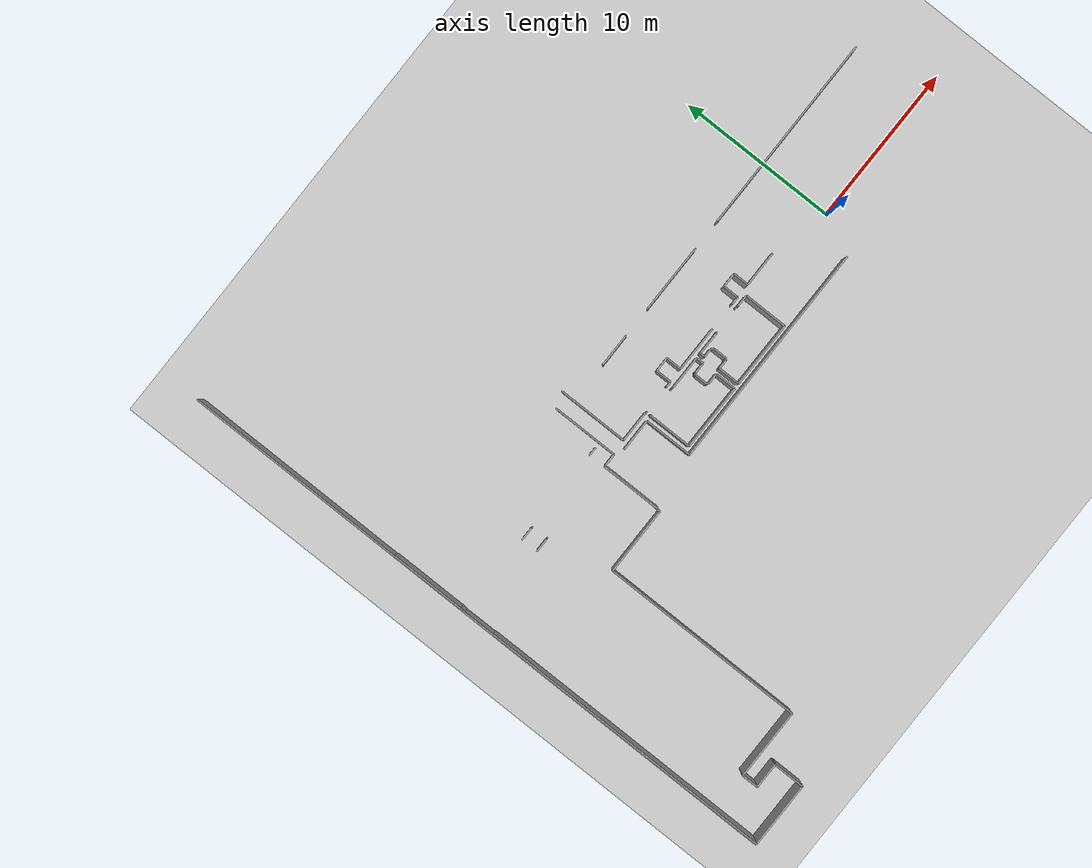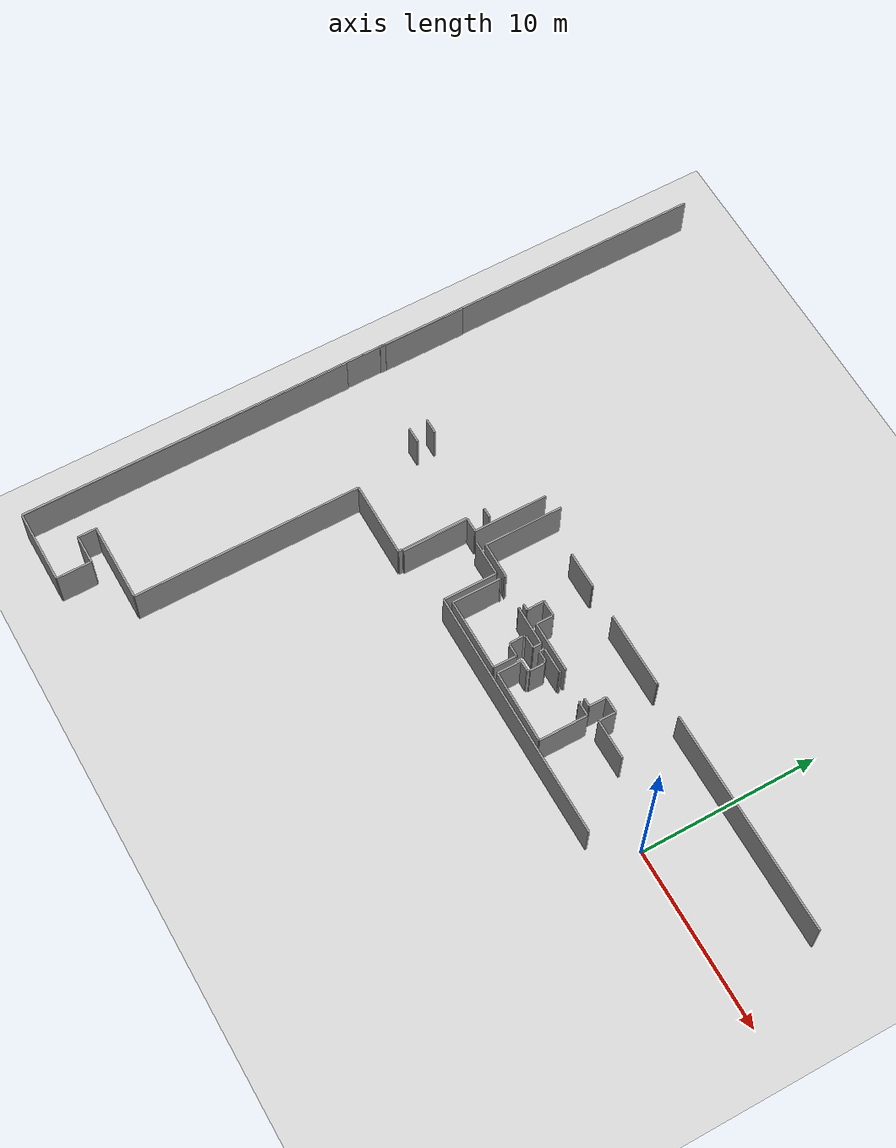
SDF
<sdf version="1.6">
 <world name="default">
  <model name="ground_plane">
   <static>1</static>
   <link name="link">
    <collision name="collision">
     <geometry><plane><normal>0 0 1</normal><size>100 100</size></plane></geometry>
     <surface><friction><ode><mu>100</mu><mu2>50</mu2></ode></friction></surface>
    </collision>
    <visual name="visual">
     <cast_shadows>0</cast_shadows>
     <geometry><plane><normal>0 0 1</normal><size>100 100</size></plane></geometry>
     <material>
      <script><uri>file://media/materials/scripts/gazebo.material</uri><name>Gazebo/Grey</name></script>
     </material>
    </visual>
   </link>
  </model>
  <model name="0510032259_A_40_1_101">
   <static>1</static>
   <link name="Wall_11">
    <collision name="Wall_11_Collision">
     <geometry><box><size>4.69146624995 0.1 2.5</size></box></geometry>
     <pose>2.34573312498 0 1.25 0 0 0</pose>
    </collision>
    <visual name="Wall_11_Visual">
     <pose>2.34573312498 0 1.25 0 0 0</pose>
     <geometry><box><size>4.69146624995 0.1 2.5</size></box></geometry>
     <material>
      <script><uri>file://media/materials/scripts/gazebo.material</uri><name>Gazebo/Grey</name></script>
      <ambient>1 1 1 1</ambient>
     </material>
    </visual>
    <pose>0.0318888084258 -18.6801082441 0 0 0 1.57079632679</pose>
   </link>
   <link name="Wall_18">
    <collision name="Wall_18_Collision">
     <geometry><box><size>0.558752906201 0.1 2.5</size></box></geometry>
     <pose>0.279376453101 0 1.25 0 0 0</pose>
    </collision>
    <visual name="Wall_18_Visual">
     <pose>0.279376453101 0 1.25 0 0 0</pose>
     <geometry><box><size>0.558752906201 0.1 2.5</size></box></geometry>
     <material>
      <script><uri>file://media/materials/scripts/gazebo.material</uri><name>Gazebo/Grey</name></script>
      <ambient>1 1 1 1</ambient>
     </material>
    </visual>
    <pose>11.688455235 -19.0025536456 0 0 0 3.14159265359</pose>
   </link>
   <link name="Wall_19">
    <collision name="Wall_19_Collision">
     <geometry><box><size>0.847276746579 0.1 2.5</size></box></geometry>
     <pose>0.42363837329 0 1.25 0 0 0</pose>
    </collision>
    <visual name="Wall_19_Visual">
     <pose>0.42363837329 0 1.25 0 0 0</pose>
     <geometry><box><size>0.847276746579 0.1 2.5</size></box></geometry>
     <material>
      <script><uri>file://media/materials/scripts/gazebo.material</uri><name>Gazebo/Grey</name></script>
      <ambient>1 1 1 1</ambient>
     </material>
    </visual>
    <pose>5.98391584404 -19.0025536456 0 0 0 3.14159265359</pose>
   </link>
   <link name="Wall_20">
    <collision name="Wall_20_Collision">
     <geometry><box><size>0.322593764156 0.1 2.5</size></box></geometry>
     <pose>0.161296882078 0 1.25 0 0 0</pose>
    </collision>
    <visual name="Wall_20_Visual">
     <pose>0.161296882078 0 1.25 0 0 0</pose>
     <geometry><box><size>0.322593764156 0.1 2.5</size></box></geometry>
     <material>
      <script><uri>file://media/materials/scripts/gazebo.material</uri><name>Gazebo/Grey</name></script>
      <ambient>1 1 1 1</ambient>
     </material>
    </visual>
    <pose>0.0221061859206 -19.0025536456 0 0 0 1.54046678059</pose>
   </link>
   <link name="Wall_21">
    <collision name="Wall_21_Collision">
     <geometry><box><size>18.7088208764 0.1 2.5</size></box></geometry>
     <pose>9.35441043819 0 1.25 0 0 0</pose>
    </collision>
    <visual name="Wall_21_Visual">
     <pose>9.35441043819 0 1.25 0 0 0</pose>
     <geometry><box><size>18.7088208764 0.1 2.5</size></box></geometry>
     <material>
      <script><uri>file://media/materials/scripts/gazebo.material</uri><name>Gazebo/Grey</name></script>
      <ambient>1 1 1 1</ambient>
     </material>
    </visual>
    <pose>0.0362084079735 -39.7117302537 0 0 0 1.57079632679</pose>
   </link>
   <link name="Wall_22">
    <collision name="Wall_22_Collision">
     <geometry><box><size>0.0362084079735 0.1 2.5</size></box></geometry>
     <pose>0.0181042039867 0 1.25 0 0 0</pose>
    </collision>
    <visual name="Wall_22_Visual">
     <pose>0.0181042039867 0 1.25 0 0 0</pose>
     <geometry><box><size>0.0362084079735 0.1 2.5</size></box></geometry>
     <material>
      <script><uri>file://media/materials/scripts/gazebo.material</uri><name>Gazebo/Grey</name></script>
      <ambient>1 1 1 1</ambient>
     </material>
    </visual>
    <pose>0.0362084079735 -21.0029093773 0 0 0 3.14159265359</pose>
   </link>
   <link name="Wall_23">
    <collision name="Wall_23_Collision">
     <geometry><box><size>0.0195652450102 0.1 2.5</size></box></geometry>
     <pose>0.00978262250511 0 1.25 0 0 0</pose>
    </collision>
    <visual name="Wall_23_Visual">
     <pose>0.00978262250511 0 1.25 0 0 0</pose>
     <geometry><box><size>0.0195652450102 0.1 2.5</size></box></geometry>
     <material>
      <script><uri>file://media/materials/scripts/gazebo.material</uri><name>Gazebo/Grey</name></script>
      <ambient>1 1 1 1</ambient>
     </material>
    </visual>
    <pose>0.0 -20.0471344539 0 0 0 0.0</pose>
   </link>
   <link name="Wall_24">
    <collision name="Wall_24_Collision">
     <geometry><box><size>0.884374483871 0.1 2.5</size></box></geometry>
     <pose>0.442187241936 0 1.25 0 0 0</pose>
    </collision>
    <visual name="Wall_24_Visual">
     <pose>0.442187241936 0 1.25 0 0 0</pose>
     <geometry><box><size>0.884374483871 0.1 2.5</size></box></geometry>
     <material>
      <script><uri>file://media/materials/scripts/gazebo.material</uri><name>Gazebo/Grey</name></script>
      <ambient>1 1 1 1</ambient>
     </material>
    </visual>
    <pose>5.14781923746 -20.0471344539 0 0 0 0.0</pose>
   </link>
   <link name="Wall_25">
    <collision name="Wall_25_Collision">
     <geometry><box><size>3.73480199718 0.1 2.5</size></box></geometry>
     <pose>1.86740099859 0 1.25 0 0 0</pose>
    </collision>
    <visual name="Wall_25_Visual">
     <pose>1.86740099859 0 1.25 0 0 0</pose>
     <geometry><box><size>3.73480199718 0.1 2.5</size></box></geometry>
     <material>
      <script><uri>file://media/materials/scripts/gazebo.material</uri><name>Gazebo/Grey</name></script>
      <ambient>1 1 1 1</ambient>
     </material>
    </visual>
    <pose>11.1791236295 -20.0471344539 0 0 0 -1.57079632679</pose>
   </link>
   <link name="Wall_26">
    <collision name="Wall_26_Collision">
     <geometry><box><size>0.0316347143347 0.1 2.5</size></box></geometry>
     <pose>0.0158173571674 0 1.25 0 0 0</pose>
    </collision>
    <visual name="Wall_26_Visual">
     <pose>0.0158173571674 0 1.25 0 0 0</pose>
     <geometry><box><size>0.0316347143347 0.1 2.5</size></box></geometry>
     <material>
      <script><uri>file://media/materials/scripts/gazebo.material</uri><name>Gazebo/Grey</name></script>
      <ambient>1 1 1 1</ambient>
     </material>
    </visual>
    <pose>11.1791236295 -23.7819364511 0 0 0 3.14159265359</pose>
   </link>
   <link name="Wall_27">
    <collision name="Wall_27_Collision">
     <geometry><box><size>0.226143741027 0.1 2.5</size></box></geometry>
     <pose>0.113071870514 0 1.25 0 0 0</pose>
    </collision>
    <visual name="Wall_27_Visual">
     <pose>0.113071870514 0 1.25 0 0 0</pose>
     <geometry><box><size>0.226143741027 0.1 2.5</size></box></geometry>
     <material>
      <script><uri>file://media/materials/scripts/gazebo.material</uri><name>Gazebo/Grey</name></script>
      <ambient>1 1 1 1</ambient>
     </material>
    </visual>
    <pose>11.1474889151 -23.7819364511 0 0 0 -1.57079632679</pose>
   </link>
   <link name="Wall_28">
    <collision name="Wall_28_Collision">
     <geometry><box><size>4.21249888834 0.1 2.5</size></box></geometry>
     <pose>2.10624944417 0 1.25 0 0 0</pose>
    </collision>
    <visual name="Wall_28_Visual">
     <pose>2.10624944417 0 1.25 0 0 0</pose>
     <geometry><box><size>4.21249888834 0.1 2.5</size></box></geometry>
     <material>
      <script><uri>file://media/materials/scripts/gazebo.material</uri><name>Gazebo/Grey</name></script>
      <ambient>1 1 1 1</ambient>
     </material>
    </visual>
    <pose>11.1474889151 -24.0080801921 0 0 0 3.14159265359</pose>
   </link>
   <link name="Wall_29">
    <collision name="Wall_29_Collision">
     <geometry><box><size>12.735195843 0.1 2.5</size></box></geometry>
     <pose>6.36759792151 0 1.25 0 0 0</pose>
    </collision>
    <visual name="Wall_29_Visual">
     <pose>6.36759792151 0 1.25 0 0 0</pose>
     <geometry><box><size>12.735195843 0.1 2.5</size></box></geometry>
     <material>
      <script><uri>file://media/materials/scripts/gazebo.material</uri><name>Gazebo/Grey</name></script>
      <ambient>1 1 1 1</ambient>
     </material>
    </visual>
    <pose>6.93499002681 -24.0080801921 0 0 0 -1.57079632679</pose>
   </link>
   <link name="Wall_30">
    <collision name="Wall_30_Collision">
     <geometry><box><size>4.39061884616 0.1 2.5</size></box></geometry>
     <pose>2.19530942308 0 1.25 0 0 0</pose>
    </collision>
    <visual name="Wall_30_Visual">
     <pose>2.19530942308 0 1.25 0 0 0</pose>
     <geometry><box><size>4.39061884616 0.1 2.5</size></box></geometry>
     <material>
      <script><uri>file://media/materials/scripts/gazebo.material</uri><name>Gazebo/Grey</name></script>
      <ambient>1 1 1 1</ambient>
     </material>
    </visual>
    <pose>6.93499002681 -36.7432760351 0 0 0 3.14159265359</pose>
   </link>
   <link name="Wall_31">
    <collision name="Wall_31_Collision">
     <geometry><box><size>1.0253967044 0.1 2.5</size></box></geometry>
     <pose>0.5126983522 0 1.25 0 0 0</pose>
    </collision>
    <visual name="Wall_31_Visual">
     <pose>0.5126983522 0 1.25 0 0 0</pose>
     <geometry><box><size>1.0253967044 0.1 2.5</size></box></geometry>
     <material>
      <script><uri>file://media/materials/scripts/gazebo.material</uri><name>Gazebo/Grey</name></script>
      <ambient>1 1 1 1</ambient>
     </material>
    </visual>
    <pose>2.54437118065 -36.7432760351 0 0 0 -1.57079632679</pose>
   </link>
   <link name="Wall_32">
    <collision name="Wall_32_Collision">
     <geometry><box><size>1.58999377469 0.1 2.5</size></box></geometry>
     <pose>0.794996887347 0 1.25 0 0 0</pose>
    </collision>
    <visual name="Wall_32_Visual">
     <pose>0.794996887347 0 1.25 0 0 0</pose>
     <geometry><box><size>1.58999377469 0.1 2.5</size></box></geometry>
     <material>
      <script><uri>file://media/materials/scripts/gazebo.material</uri><name>Gazebo/Grey</name></script>
      <ambient>1 1 1 1</ambient>
     </material>
    </visual>
    <pose>2.54437118065 -37.7686727395 0 0 0 0.0</pose>
   </link>
   <link name="Wall_33">
    <collision name="Wall_33_Collision">
     <geometry><box><size>1.94280342011 0.1 2.5</size></box></geometry>
     <pose>0.971401710053 0 1.25 0 0 0</pose>
    </collision>
    <visual name="Wall_33_Visual">
     <pose>0.971401710053 0 1.25 0 0 0</pose>
     <geometry><box><size>1.94280342011 0.1 2.5</size></box></geometry>
     <material>
      <script><uri>file://media/materials/scripts/gazebo.material</uri><name>Gazebo/Grey</name></script>
      <ambient>1 1 1 1</ambient>
     </material>
    </visual>
    <pose>4.13436495534 -37.7686727395 0 0 0 -1.57079632679</pose>
   </link>
   <link name="Wall_34">
    <collision name="Wall_34_Collision">
     <geometry><box><size>4.09815655525 0.1 2.5</size></box></geometry>
     <pose>2.04907827762 0 1.25 0 0 0</pose>
    </collision>
    <visual name="Wall_34_Visual">
     <pose>2.04907827762 0 1.25 0 0 0</pose>
     <geometry><box><size>4.09815655525 0.1 2.5</size></box></geometry>
     <material>
      <script><uri>file://media/materials/scripts/gazebo.material</uri><name>Gazebo/Grey</name></script>
      <ambient>1 1 1 1</ambient>
     </material>
    </visual>
    <pose>4.13436495534 -39.7114761596 0 0 0 -3.14153065154</pose>
   </link>
   <link name="Wall_35">
    <collision name="Wall_35_Collision">
     <geometry><box><size>4.4091677148 0.1 2.5</size></box></geometry>
     <pose>2.2045838574 0 1.25 0 0 0</pose>
    </collision>
    <visual name="Wall_35_Visual">
     <pose>2.2045838574 0 1.25 0 0 0</pose>
     <geometry><box><size>4.4091677148 0.1 2.5</size></box></geometry>
     <material>
      <script><uri>file://media/materials/scripts/gazebo.material</uri><name>Gazebo/Grey</name></script>
      <ambient>1 1 1 1</ambient>
     </material>
    </visual>
    <pose>12.9830646288 -19.9635374979 0 0 0 1.57079632679</pose>
   </link>
   <link name="Wall_50">
    <collision name="Wall_50_Collision">
     <geometry><box><size>2.0692152304 0.1 2.5</size></box></geometry>
     <pose>1.0346076152 0 1.25 0 0 0</pose>
    </collision>
    <visual name="Wall_50_Visual">
     <pose>1.0346076152 0 1.25 0 0 0</pose>
     <geometry><box><size>2.0692152304 0.1 2.5</size></box></geometry>
     <material>
      <script><uri>file://media/materials/scripts/gazebo.material</uri><name>Gazebo/Grey</name></script>
      <ambient>1 1 1 1</ambient>
     </material>
    </visual>
    <pose>15.5409027963 -16.4543710536 0 0 0 0.0</pose>
   </link>
   <link name="Wall_51">
    <collision name="Wall_51_Collision">
     <geometry><box><size>0.0335404200175 0.1 2.5</size></box></geometry>
     <pose>0.0167702100088 0 1.25 0 0 0</pose>
    </collision>
    <visual name="Wall_51_Visual">
     <pose>0.0167702100088 0 1.25 0 0 0</pose>
     <geometry><box><size>0.0335404200175 0.1 2.5</size></box></geometry>
     <material>
      <script><uri>file://media/materials/scripts/gazebo.material</uri><name>Gazebo/Grey</name></script>
      <ambient>1 1 1 1</ambient>
     </material>
    </visual>
    <pose>17.6101180267 -16.4543710536 0 0 0 1.57079632679</pose>
   </link>
   <link name="Wall_55">
    <collision name="Wall_55_Collision">
     <geometry><box><size>4.2333346038 0.1 2.5</size></box></geometry>
     <pose>2.1166673019 0 1.25 0 0 0</pose>
    </collision>
    <visual name="Wall_55_Visual">
     <pose>2.1166673019 0 1.25 0 0 0</pose>
     <geometry><box><size>4.2333346038 0.1 2.5</size></box></geometry>
     <material>
      <script><uri>file://media/materials/scripts/gazebo.material</uri><name>Gazebo/Grey</name></script>
      <ambient>1 1 1 1</ambient>
     </material>
    </visual>
    <pose>19.5470772827 -16.4574201827 0 0 0 0.0</pose>
   </link>
   <link name="Wall_56">
    <collision name="Wall_56_Collision">
     <geometry><box><size>0.0381141136563 0.1 2.5</size></box></geometry>
     <pose>0.0190570568281 0 1.25 0 0 0</pose>
    </collision>
    <visual name="Wall_56_Visual">
     <pose>0.0190570568281 0 1.25 0 0 0</pose>
     <geometry><box><size>0.0381141136563 0.1 2.5</size></box></geometry>
     <material>
      <script><uri>file://media/materials/scripts/gazebo.material</uri><name>Gazebo/Grey</name></script>
      <ambient>1 1 1 1</ambient>
     </material>
    </visual>
    <pose>23.7804118865 -16.4574201827 0 0 0 1.57079632679</pose>
   </link>
   <link name="Wall_60">
    <collision name="Wall_60_Collision">
     <geometry><box><size>12.3884844558 0.1 2.5</size></box></geometry>
     <pose>6.1942422279 0 1.25 0 0 0</pose>
    </collision>
    <visual name="Wall_60_Visual">
     <pose>6.1942422279 0 1.25 0 0 0</pose>
     <geometry><box><size>12.3884844558 0.1 2.5</size></box></geometry>
     <material>
      <script><uri>file://media/materials/scripts/gazebo.material</uri><name>Gazebo/Grey</name></script>
      <ambient>1 1 1 1</ambient>
     </material>
    </visual>
    <pose>25.7347765878 -16.45538743 0 0 0 0.0</pose>
   </link>
   <link name="Wall_98">
    <collision name="Wall_98_Collision">
     <geometry><box><size>2.21697094434 0.1 2.5</size></box></geometry>
     <pose>1.10848547217 0 1.25 0 0 0</pose>
    </collision>
    <visual name="Wall_98_Visual">
     <pose>1.10848547217 0 1.25 0 0 0</pose>
     <geometry><box><size>2.21697094434 0.1 2.5</size></box></geometry>
     <material>
      <script><uri>file://media/materials/scripts/gazebo.material</uri><name>Gazebo/Grey</name></script>
      <ambient>1 1 1 1</ambient>
     </material>
    </visual>
    <pose>26.2559235685 -19.9800536139 0 0 0 3.14159265359</pose>
   </link>
   <link name="Wall_99">
    <collision name="Wall_99_Collision">
     <geometry><box><size>0.973434462782 0.1 2.5</size></box></geometry>
     <pose>0.486717231391 0 1.25 0 0 0</pose>
    </collision>
    <visual name="Wall_99_Visual">
     <pose>0.486717231391 0 1.25 0 0 0</pose>
     <geometry><box><size>0.973434462782 0.1 2.5</size></box></geometry>
     <material>
      <script><uri>file://media/materials/scripts/gazebo.material</uri><name>Gazebo/Grey</name></script>
      <ambient>1 1 1 1</ambient>
     </material>
    </visual>
    <pose>24.0389526242 -19.9800536139 0 0 0 1.57079632679</pose>
   </link>
   <link name="Wall_100">
    <collision name="Wall_100_Collision">
     <geometry><box><size>0.898222611833 0.1 2.5</size></box></geometry>
     <pose>0.449111305917 0 1.25 0 0 0</pose>
    </collision>
    <visual name="Wall_100_Visual">
     <pose>0.449111305917 0 1.25 0 0 0</pose>
     <geometry><box><size>0.898222611833 0.1 2.5</size></box></geometry>
     <material>
      <script><uri>file://media/materials/scripts/gazebo.material</uri><name>Gazebo/Grey</name></script>
      <ambient>1 1 1 1</ambient>
     </material>
    </visual>
    <pose>24.0389526242 -19.0066191511 0 0 0 3.14159265359</pose>
   </link>
   <link name="Wall_101">
    <collision name="Wall_101_Collision">
     <geometry><box><size>0.971528757099 0.1 2.5</size></box></geometry>
     <pose>0.485764378549 0 1.25 0 0 0</pose>
    </collision>
    <visual name="Wall_101_Visual">
     <pose>0.485764378549 0 1.25 0 0 0</pose>
     <geometry><box><size>0.971528757099 0.1 2.5</size></box></geometry>
     <material>
      <script><uri>file://media/materials/scripts/gazebo.material</uri><name>Gazebo/Grey</name></script>
      <ambient>1 1 1 1</ambient>
     </material>
    </visual>
    <pose>23.1407300123 -19.0066191511 0 0 0 -1.57079632679</pose>
   </link>
   <link name="Wall_102">
    <collision name="Wall_102_Collision">
     <geometry><box><size>0.470836350701 0.1 2.5</size></box></geometry>
     <pose>0.23541817535 0 1.25 0 0 0</pose>
    </collision>
    <visual name="Wall_102_Visual">
     <pose>0.23541817535 0 1.25 0 0 0</pose>
     <geometry><box><size>0.470836350701 0.1 2.5</size></box></geometry>
     <material>
      <script><uri>file://media/materials/scripts/gazebo.material</uri><name>Gazebo/Grey</name></script>
      <ambient>1 1 1 1</ambient>
     </material>
    </visual>
    <pose>23.1407300123 -19.9781479082 0 0 0 3.14159265359</pose>
   </link>
   <link name="Wall_103">
    <collision name="Wall_103_Collision">
     <geometry><box><size>2.84242354944 0.1 2.5</size></box></geometry>
     <pose>1.42121177472 0 1.25 0 0 0</pose>
    </collision>
    <visual name="Wall_103_Visual">
     <pose>1.42121177472 0 1.25 0 0 0</pose>
     <geometry><box><size>2.84242354944 0.1 2.5</size></box></geometry>
     <material>
      <script><uri>file://media/materials/scripts/gazebo.material</uri><name>Gazebo/Grey</name></script>
      <ambient>1 1 1 1</ambient>
     </material>
    </visual>
    <pose>20.8897104598 -19.9781479082 0 0 0 3.14159265359</pose>
   </link>
   <link name="Wall_104">
    <collision name="Wall_104_Collision">
     <geometry><box><size>0.971909898235 0.1 2.5</size></box></geometry>
     <pose>0.485954949118 0 1.25 0 0 0</pose>
    </collision>
    <visual name="Wall_104_Visual">
     <pose>0.485954949118 0 1.25 0 0 0</pose>
     <geometry><box><size>0.971909898235 0.1 2.5</size></box></geometry>
     <material>
      <script><uri>file://media/materials/scripts/gazebo.material</uri><name>Gazebo/Grey</name></script>
      <ambient>1 1 1 1</ambient>
     </material>
    </visual>
    <pose>18.0472869103 -19.9781479082 0 0 0 1.57079632679</pose>
   </link>
   <link name="Wall_105">
    <collision name="Wall_105_Collision">
     <geometry><box><size>0.899747176379 0.1 2.5</size></box></geometry>
     <pose>0.44987358819 0 1.25 0 0 0</pose>
    </collision>
    <visual name="Wall_105_Visual">
     <pose>0.44987358819 0 1.25 0 0 0</pose>
     <geometry><box><size>0.899747176379 0.1 2.5</size></box></geometry>
     <material>
      <script><uri>file://media/materials/scripts/gazebo.material</uri><name>Gazebo/Grey</name></script>
      <ambient>1 1 1 1</ambient>
     </material>
    </visual>
    <pose>18.0472869103 -19.0062380099 0 0 0 3.14159265359</pose>
   </link>
   <link name="Wall_106">
    <collision name="Wall_106_Collision">
     <geometry><box><size>0.985376885061 0.1 2.5</size></box></geometry>
     <pose>0.49268844253 0 1.25 0 0 0</pose>
    </collision>
    <visual name="Wall_106_Visual">
     <pose>0.49268844253 0 1.25 0 0 0</pose>
     <geometry><box><size>0.985376885061 0.1 2.5</size></box></geometry>
     <material>
      <script><uri>file://media/materials/scripts/gazebo.material</uri><name>Gazebo/Grey</name></script>
      <ambient>1 1 1 1</ambient>
     </material>
    </visual>
    <pose>17.147539734 -19.0062380099 0 0 0 -1.57079632679</pose>
   </link>
   <link name="Wall_107">
    <collision name="Wall_107_Collision">
     <geometry><box><size>0.3474736695 0.1 2.5</size></box></geometry>
     <pose>0.17373683475 0 1.25 0 0 0</pose>
    </collision>
    <visual name="Wall_107_Visual">
     <pose>0.17373683475 0 1.25 0 0 0</pose>
     <geometry><box><size>0.3474736695 0.1 2.5</size></box></geometry>
     <material>
      <script><uri>file://media/materials/scripts/gazebo.material</uri><name>Gazebo/Grey</name></script>
      <ambient>1 1 1 1</ambient>
     </material>
    </visual>
    <pose>17.147539734 -19.991614895 0 0 0 3.14159265359</pose>
   </link>
   <link name="Wall_108">
    <collision name="Wall_108_Collision">
     <geometry><box><size>0.114723482105 0.1 2.5</size></box></geometry>
     <pose>0.0573617410527 0 1.25 0 0 0</pose>
    </collision>
    <visual name="Wall_108_Visual">
     <pose>0.0573617410527 0 1.25 0 0 0</pose>
     <geometry><box><size>0.114723482105 0.1 2.5</size></box></geometry>
     <material>
      <script><uri>file://media/materials/scripts/gazebo.material</uri><name>Gazebo/Grey</name></script>
      <ambient>1 1 1 1</ambient>
     </material>
    </visual>
    <pose>15.043132472 -19.991614895 0 0 0 3.14159265359</pose>
   </link>
   <link name="Wall_109">
    <collision name="Wall_109_Collision">
     <geometry><box><size>0.0236307504669 0.1 2.5</size></box></geometry>
     <pose>0.0118153752334 0 1.25 0 0 0</pose>
    </collision>
    <visual name="Wall_109_Visual">
     <pose>0.0118153752334 0 1.25 0 0 0</pose>
     <geometry><box><size>0.0236307504669 0.1 2.5</size></box></geometry>
     <material>
      <script><uri>file://media/materials/scripts/gazebo.material</uri><name>Gazebo/Grey</name></script>
      <ambient>1 1 1 1</ambient>
     </material>
    </visual>
    <pose>14.9284089898 -19.991614895 0 0 0 1.57079632679</pose>
   </link>
   <link name="Wall_110">
    <collision name="Wall_110_Collision">
     <geometry><box><size>1.94534944306 0.1 2.5</size></box></geometry>
     <pose>0.972674721529 0 1.25 0 0 0</pose>
    </collision>
    <visual name="Wall_110_Visual">
     <pose>0.972674721529 0 1.25 0 0 0</pose>
     <geometry><box><size>1.94534944306 0.1 2.5</size></box></geometry>
     <material>
      <script><uri>file://media/materials/scripts/gazebo.material</uri><name>Gazebo/Grey</name></script>
      <ambient>1 1 1 1</ambient>
     </material>
    </visual>
    <pose>14.9284089898 -19.9679841445 0 0 0 3.13930686865</pose>
   </link>
   <link name="Wall_263">
    <collision name="Wall_263_Collision">
     <geometry><box><size>2.73799087802 0.1 2.5</size></box></geometry>
     <pose>1.36899543901 0 1.25 0 0 0</pose>
    </collision>
    <visual name="Wall_263_Visual">
     <pose>1.36899543901 0 1.25 0 0 0</pose>
     <geometry><box><size>2.73799087802 0.1 2.5</size></box></geometry>
     <material>
      <script><uri>file://media/materials/scripts/gazebo.material</uri><name>Gazebo/Grey</name></script>
      <ambient>1 1 1 1</ambient>
     </material>
    </visual>
    <pose>14.9872317719 -23.0172402841 0 0 0 1.57079632679</pose>
   </link>
   <link name="Wall_264">
    <collision name="Wall_264_Collision">
     <geometry><box><size>0.075847086176 0.1 2.5</size></box></geometry>
     <pose>0.037923543088 0 1.25 0 0 0</pose>
    </collision>
    <visual name="Wall_264_Visual">
     <pose>0.037923543088 0 1.25 0 0 0</pose>
     <geometry><box><size>0.075847086176 0.1 2.5</size></box></geometry>
     <material>
      <script><uri>file://media/materials/scripts/gazebo.material</uri><name>Gazebo/Grey</name></script>
      <ambient>1 1 1 1</ambient>
     </material>
    </visual>
    <pose>14.9872317719 -20.2792494061 0 0 0 0.0</pose>
   </link>
   <link name="Wall_265">
    <collision name="Wall_265_Collision">
     <geometry><box><size>0.0855026616356 0.1 2.5</size></box></geometry>
     <pose>0.0427513308178 0 1.25 0 0 0</pose>
    </collision>
    <visual name="Wall_265_Visual">
     <pose>0.0427513308178 0 1.25 0 0 0</pose>
     <geometry><box><size>0.0855026616356 0.1 2.5</size></box></geometry>
     <material>
      <script><uri>file://media/materials/scripts/gazebo.material</uri><name>Gazebo/Grey</name></script>
      <ambient>1 1 1 1</ambient>
     </material>
    </visual>
    <pose>16.8341146727 -20.2792494061 0 0 0 0.0</pose>
   </link>
   <link name="Wall_266">
    <collision name="Wall_266_Collision">
     <geometry><box><size>0.0231225622848 0.1 2.5</size></box></geometry>
     <pose>0.0115612811424 0 1.25 0 0 0</pose>
    </collision>
    <visual name="Wall_266_Visual">
     <pose>0.0115612811424 0 1.25 0 0 0</pose>
     <geometry><box><size>0.0231225622848 0.1 2.5</size></box></geometry>
     <material>
      <script><uri>file://media/materials/scripts/gazebo.material</uri><name>Gazebo/Grey</name></script>
      <ambient>1 1 1 1</ambient>
     </material>
    </visual>
    <pose>16.9196173343 -20.2792494061 0 0 0 -1.57079632679</pose>
   </link>
   <link name="Wall_267">
    <collision name="Wall_267_Collision">
     <geometry><box><size>2.16348413818 0.1 2.5</size></box></geometry>
     <pose>1.08174206909 0 1.25 0 0 0</pose>
    </collision>
    <visual name="Wall_267_Visual">
     <pose>1.08174206909 0 1.25 0 0 0</pose>
     <geometry><box><size>2.16348413818 0.1 2.5</size></box></geometry>
     <material>
      <script><uri>file://media/materials/scripts/gazebo.material</uri><name>Gazebo/Grey</name></script>
      <ambient>1 1 1 1</ambient>
     </material>
    </visual>
    <pose>16.9196173343 -20.3023719683 0 0 0 0.0</pose>
   </link>
   <link name="Wall_268">
    <collision name="Wall_268_Collision">
     <geometry><box><size>0.465246280698 0.1 2.5</size></box></geometry>
     <pose>0.232623140349 0 1.25 0 0 0</pose>
    </collision>
    <visual name="Wall_268_Visual">
     <pose>0.232623140349 0 1.25 0 0 0</pose>
     <geometry><box><size>0.465246280698 0.1 2.5</size></box></geometry>
     <material>
      <script><uri>file://media/materials/scripts/gazebo.material</uri><name>Gazebo/Grey</name></script>
      <ambient>1 1 1 1</ambient>
     </material>
    </visual>
    <pose>19.0831014725 -20.3023719683 0 0 0 -1.57079632679</pose>
   </link>
   <link name="Wall_269">
    <collision name="Wall_269_Collision">
     <geometry><box><size>0.674746858762 0.1 2.5</size></box></geometry>
     <pose>0.337373429381 0 1.25 0 0 0</pose>
    </collision>
    <visual name="Wall_269_Visual">
     <pose>0.337373429381 0 1.25 0 0 0</pose>
     <geometry><box><size>0.674746858762 0.1 2.5</size></box></geometry>
     <material>
      <script><uri>file://media/materials/scripts/gazebo.material</uri><name>Gazebo/Grey</name></script>
      <ambient>1 1 1 1</ambient>
     </material>
    </visual>
    <pose>19.0831014725 -20.767618249 0 0 0 3.14159265359</pose>
   </link>
   <link name="Wall_270">
    <collision name="Wall_270_Collision">
     <geometry><box><size>0.154656336357 0.1 2.5</size></box></geometry>
     <pose>0.0773281681785 0 1.25 0 0 0</pose>
    </collision>
    <visual name="Wall_270_Visual">
     <pose>0.0773281681785 0 1.25 0 0 0</pose>
     <geometry><box><size>0.154656336357 0.1 2.5</size></box></geometry>
     <material>
      <script><uri>file://media/materials/scripts/gazebo.material</uri><name>Gazebo/Grey</name></script>
      <ambient>1 1 1 1</ambient>
     </material>
    </visual>
    <pose>18.4083546137 -20.767618249 0 0 0 -2.2835213018</pose>
   </link>
   <link name="Wall_271">
    <collision name="Wall_271_Collision">
     <geometry><box><size>0.743606357434 0.1 2.5</size></box></geometry>
     <pose>0.371803178717 0 1.25 0 0 0</pose>
    </collision>
    <visual name="Wall_271_Visual">
     <pose>0.371803178717 0 1.25 0 0 0</pose>
     <geometry><box><size>0.743606357434 0.1 2.5</size></box></geometry>
     <material>
      <script><uri>file://media/materials/scripts/gazebo.material</uri><name>Gazebo/Grey</name></script>
      <ambient>1 1 1 1</ambient>
     </material>
    </visual>
    <pose>18.3072251655 -20.884628578 0 0 0 -1.57079632679</pose>
   </link>
   <link name="Wall_272">
    <collision name="Wall_272_Collision">
     <geometry><box><size>0.138192850535 0.1 2.5</size></box></geometry>
     <pose>0.0690964252676 0 1.25 0 0 0</pose>
    </collision>
    <visual name="Wall_272_Visual">
     <pose>0.0690964252676 0 1.25 0 0 0</pose>
     <geometry><box><size>0.138192850535 0.1 2.5</size></box></geometry>
     <material>
      <script><uri>file://media/materials/scripts/gazebo.material</uri><name>Gazebo/Grey</name></script>
      <ambient>1 1 1 1</ambient>
     </material>
    </visual>
    <pose>18.3072251655 -21.6282349354 0 0 0 -0.658946735863</pose>
   </link>
   <link name="Wall_273">
    <collision name="Wall_273_Collision">
     <geometry><box><size>0.652640672841 0.1 2.5</size></box></geometry>
     <pose>0.326320336421 0 1.25 0 0 0</pose>
    </collision>
    <visual name="Wall_273_Visual">
     <pose>0.326320336421 0 1.25 0 0 0</pose>
     <geometry><box><size>0.652640672841 0.1 2.5</size></box></geometry>
     <material>
      <script><uri>file://media/materials/scripts/gazebo.material</uri><name>Gazebo/Grey</name></script>
      <ambient>1 1 1 1</ambient>
     </material>
    </visual>
    <pose>18.4164856246 -21.7128482677 0 0 0 0.0</pose>
   </link>
   <link name="Wall_274">
    <collision name="Wall_274_Collision">
     <geometry><box><size>1.306170675 0.1 2.5</size></box></geometry>
     <pose>0.6530853375 0 1.25 0 0 0</pose>
    </collision>
    <visual name="Wall_274_Visual">
     <pose>0.6530853375 0 1.25 0 0 0</pose>
     <geometry><box><size>1.306170675 0.1 2.5</size></box></geometry>
     <material>
      <script><uri>file://media/materials/scripts/gazebo.material</uri><name>Gazebo/Grey</name></script>
      <ambient>1 1 1 1</ambient>
     </material>
    </visual>
    <pose>19.0691262975 -21.7128482677 0 0 0 -1.57079632679</pose>
   </link>
   <link name="Wall_275">
    <collision name="Wall_275_Collision">
     <geometry><box><size>4.08189491306 0.1 2.5</size></box></geometry>
     <pose>2.04094745653 0 1.25 0 0 0</pose>
    </collision>
    <visual name="Wall_275_Visual">
     <pose>2.04094745653 0 1.25 0 0 0</pose>
     <geometry><box><size>4.08189491306 0.1 2.5</size></box></geometry>
     <material>
      <script><uri>file://media/materials/scripts/gazebo.material</uri><name>Gazebo/Grey</name></script>
      <ambient>1 1 1 1</ambient>
     </material>
    </visual>
    <pose>19.0691262975 -23.0190189427 0 0 0 3.14115691021</pose>
   </link>
   <link name="Wall_276">
    <collision name="Wall_276_Collision">
     <geometry><box><size>1.35063714093 0.1 2.5</size></box></geometry>
     <pose>0.675318570467 0 1.25 0 0 0</pose>
    </collision>
    <visual name="Wall_276_Visual">
     <pose>0.675318570467 0 1.25 0 0 0</pose>
     <geometry><box><size>1.35063714093 0.1 2.5</size></box></geometry>
     <material>
      <script><uri>file://media/materials/scripts/gazebo.material</uri><name>Gazebo/Grey</name></script>
      <ambient>1 1 1 1</ambient>
     </material>
    </visual>
    <pose>19.419522049 -23.0045355795 0 0 0 1.57079632679</pose>
   </link>
   <link name="Wall_277">
    <collision name="Wall_277_Collision">
     <geometry><box><size>0.581494327349 0.1 2.5</size></box></geometry>
     <pose>0.290747163675 0 1.25 0 0 0</pose>
    </collision>
    <visual name="Wall_277_Visual">
     <pose>0.290747163675 0 1.25 0 0 0</pose>
     <geometry><box><size>0.581494327349 0.1 2.5</size></box></geometry>
     <material>
      <script><uri>file://media/materials/scripts/gazebo.material</uri><name>Gazebo/Grey</name></script>
      <ambient>1 1 1 1</ambient>
     </material>
    </visual>
    <pose>19.419522049 -21.6538984386 0 0 0 0.0</pose>
   </link>
   <link name="Wall_278">
    <collision name="Wall_278_Collision">
     <geometry><box><size>0.13875102102 0.1 2.5</size></box></geometry>
     <pose>0.0693755105101 0 1.25 0 0 0</pose>
    </collision>
    <visual name="Wall_278_Visual">
     <pose>0.0693755105101 0 1.25 0 0 0</pose>
     <geometry><box><size>0.13875102102 0.1 2.5</size></box></geometry>
     <material>
      <script><uri>file://media/materials/scripts/gazebo.material</uri><name>Gazebo/Grey</name></script>
      <ambient>1 1 1 1</ambient>
     </material>
    </visual>
    <pose>20.0010163764 -21.6538984386 0 0 0 0.89634138485</pose>
   </link>
   <link name="Wall_279">
    <collision name="Wall_279_Collision">
     <geometry><box><size>0.831777007026 0.1 2.5</size></box></geometry>
     <pose>0.415888503513 0 1.25 0 0 0</pose>
    </collision>
    <visual name="Wall_279_Visual">
     <pose>0.415888503513 0 1.25 0 0 0</pose>
     <geometry><box><size>0.831777007026 0.1 2.5</size></box></geometry>
     <material>
      <script><uri>file://media/materials/scripts/gazebo.material</uri><name>Gazebo/Grey</name></script>
      <ambient>1 1 1 1</ambient>
     </material>
    </visual>
    <pose>20.0876624614 -21.5455273088 0 0 0 1.57079632679</pose>
   </link>
   <link name="Wall_280">
    <collision name="Wall_280_Collision">
     <geometry><box><size>0.161826719698 0.1 2.5</size></box></geometry>
     <pose>0.0809133598492 0 1.25 0 0 0</pose>
    </collision>
    <visual name="Wall_280_Visual">
     <pose>0.0809133598492 0 1.25 0 0 0</pose>
     <geometry><box><size>0.161826719698 0.1 2.5</size></box></geometry>
     <material>
      <script><uri>file://media/materials/scripts/gazebo.material</uri><name>Gazebo/Grey</name></script>
      <ambient>1 1 1 1</ambient>
     </material>
    </visual>
    <pose>20.0876624614 -20.7137503017 0 0 0 2.39506379237</pose>
   </link>
   <link name="Wall_281">
    <collision name="Wall_281_Collision">
     <geometry><box><size>0.552654648016 0.1 2.5</size></box></geometry>
     <pose>0.276327324008 0 1.25 0 0 0</pose>
    </collision>
    <visual name="Wall_281_Visual">
     <pose>0.276327324008 0 1.25 0 0 0</pose>
     <geometry><box><size>0.552654648016 0.1 2.5</size></box></geometry>
     <material>
      <script><uri>file://media/materials/scripts/gazebo.material</uri><name>Gazebo/Grey</name></script>
      <ambient>1 1 1 1</ambient>
     </material>
    </visual>
    <pose>19.9688734738 -20.6038546074 0 0 0 3.14159265359</pose>
   </link>
   <link name="Wall_282">
    <collision name="Wall_282_Collision">
     <geometry><box><size>0.301482639021 0.1 2.5</size></box></geometry>
     <pose>0.150741319511 0 1.25 0 0 0</pose>
    </collision>
    <visual name="Wall_282_Visual">
     <pose>0.150741319511 0 1.25 0 0 0</pose>
     <geometry><box><size>0.301482639021 0.1 2.5</size></box></geometry>
     <material>
      <script><uri>file://media/materials/scripts/gazebo.material</uri><name>Gazebo/Grey</name></script>
      <ambient>1 1 1 1</ambient>
     </material>
    </visual>
    <pose>19.4162188258 -20.6038546074 0 0 0 1.57079632679</pose>
   </link>
   <link name="Wall_283">
    <collision name="Wall_283_Collision">
     <geometry><box><size>1.4097140171 0.1 2.5</size></box></geometry>
     <pose>0.70485700855 0 1.25 0 0 0</pose>
    </collision>
    <visual name="Wall_283_Visual">
     <pose>0.70485700855 0 1.25 0 0 0</pose>
     <geometry><box><size>1.4097140171 0.1 2.5</size></box></geometry>
     <material>
      <script><uri>file://media/materials/scripts/gazebo.material</uri><name>Gazebo/Grey</name></script>
      <ambient>1 1 1 1</ambient>
     </material>
    </visual>
    <pose>19.4162188258 -20.3023719683 0 0 0 0.0</pose>
   </link>
   <link name="Wall_284">
    <collision name="Wall_284_Collision">
     <geometry><box><size>0.0320158554713 0.1 2.5</size></box></geometry>
     <pose>0.0160079277356 0 1.25 0 0 0</pose>
    </collision>
    <visual name="Wall_284_Visual">
     <pose>0.0160079277356 0 1.25 0 0 0</pose>
     <geometry><box><size>0.0320158554713 0.1 2.5</size></box></geometry>
     <material>
      <script><uri>file://media/materials/scripts/gazebo.material</uri><name>Gazebo/Grey</name></script>
      <ambient>1 1 1 1</ambient>
     </material>
    </visual>
    <pose>20.8259328429 -20.3023719683 0 0 0 1.57079632679</pose>
   </link>
   <link name="Wall_285">
    <collision name="Wall_285_Collision">
     <geometry><box><size>0.109133412102 0.1 2.5</size></box></geometry>
     <pose>0.0545667060512 0 1.25 0 0 0</pose>
    </collision>
    <visual name="Wall_285_Visual">
     <pose>0.0545667060512 0 1.25 0 0 0</pose>
     <geometry><box><size>0.109133412102 0.1 2.5</size></box></geometry>
     <material>
      <script><uri>file://media/materials/scripts/gazebo.material</uri><name>Gazebo/Grey</name></script>
      <ambient>1 1 1 1</ambient>
     </material>
    </visual>
    <pose>20.8259328429 -20.2703561129 0 0 0 0.0</pose>
   </link>
   <link name="Wall_286">
    <collision name="Wall_286_Collision">
     <geometry><box><size>0.0650480873067 0.1 2.5</size></box></geometry>
     <pose>0.0325240436534 0 1.25 0 0 0</pose>
    </collision>
    <visual name="Wall_286_Visual">
     <pose>0.0325240436534 0 1.25 0 0 0</pose>
     <geometry><box><size>0.0650480873067 0.1 2.5</size></box></geometry>
     <material>
      <script><uri>file://media/materials/scripts/gazebo.material</uri><name>Gazebo/Grey</name></script>
      <ambient>1 1 1 1</ambient>
     </material>
    </visual>
    <pose>22.6806926605 -20.2703561129 0 0 0 0.0</pose>
   </link>
   <link name="Wall_287">
    <collision name="Wall_287_Collision">
     <geometry><box><size>0.0256635031952 0.1 2.5</size></box></geometry>
     <pose>0.0128317515976 0 1.25 0 0 0</pose>
    </collision>
    <visual name="Wall_287_Visual">
     <pose>0.0128317515976 0 1.25 0 0 0</pose>
     <geometry><box><size>0.0256635031952 0.1 2.5</size></box></geometry>
     <material>
      <script><uri>file://media/materials/scripts/gazebo.material</uri><name>Gazebo/Grey</name></script>
      <ambient>1 1 1 1</ambient>
     </material>
    </visual>
    <pose>22.7457407478 -20.2703561129 0 0 0 -1.57079632679</pose>
   </link>
   <link name="Wall_288">
    <collision name="Wall_288_Collision">
     <geometry><box><size>0.769142813584 0.1 2.5</size></box></geometry>
     <pose>0.384571406792 0 1.25 0 0 0</pose>
    </collision>
    <visual name="Wall_288_Visual">
     <pose>0.384571406792 0 1.25 0 0 0</pose>
     <geometry><box><size>0.769142813584 0.1 2.5</size></box></geometry>
     <material>
      <script><uri>file://media/materials/scripts/gazebo.material</uri><name>Gazebo/Grey</name></script>
      <ambient>1 1 1 1</ambient>
     </material>
    </visual>
    <pose>22.7457407478 -20.2960196161 0 0 0 0.0</pose>
   </link>
   <link name="Wall_289">
    <collision name="Wall_289_Collision">
     <geometry><box><size>2.72744597324 0.1 2.5</size></box></geometry>
     <pose>1.36372298662 0 1.25 0 0 0</pose>
    </collision>
    <visual name="Wall_289_Visual">
     <pose>1.36372298662 0 1.25 0 0 0</pose>
     <geometry><box><size>2.72744597324 0.1 2.5</size></box></geometry>
     <material>
      <script><uri>file://media/materials/scripts/gazebo.material</uri><name>Gazebo/Grey</name></script>
      <ambient>1 1 1 1</ambient>
     </material>
    </visual>
    <pose>23.5148835614 -20.2960196161 0 0 0 -1.57079632679</pose>
   </link>
   <link name="Wall_290">
    <collision name="Wall_290_Collision">
     <geometry><box><size>4.09540526227 0.1 2.5</size></box></geometry>
     <pose>2.04770263114 0 1.25 0 0 0</pose>
    </collision>
    <visual name="Wall_290_Visual">
     <pose>2.04770263114 0 1.25 0 0 0</pose>
     <geometry><box><size>4.09540526227 0.1 2.5</size></box></geometry>
     <material>
      <script><uri>file://media/materials/scripts/gazebo.material</uri><name>Gazebo/Grey</name></script>
      <ambient>1 1 1 1</ambient>
     </material>
    </visual>
    <pose>23.5148835614 -23.0234655893 0 0 0 3.13697038156</pose>
   </link>
   <link name="Wall_306">
    <collision name="Wall_306_Collision">
     <geometry><box><size>3.71841292831 0.1 2.5</size></box></geometry>
     <pose>1.85920646415 0 1.25 0 0 0</pose>
    </collision>
    <visual name="Wall_306_Visual">
     <pose>1.85920646415 0 1.25 0 0 0</pose>
     <geometry><box><size>3.71841292831 0.1 2.5</size></box></geometry>
     <material>
      <script><uri>file://media/materials/scripts/gazebo.material</uri><name>Gazebo/Grey</name></script>
      <ambient>1 1 1 1</ambient>
     </material>
    </visual>
    <pose>11.2469667518 -23.7669448997 0 0 0 1.57079632679</pose>
   </link>
   <link name="Wall_307">
    <collision name="Wall_307_Collision">
     <geometry><box><size>0.784134364955 0.1 2.5</size></box></geometry>
     <pose>0.392067182478 0 1.25 0 0 0</pose>
    </collision>
    <visual name="Wall_307_Visual">
     <pose>0.392067182478 0 1.25 0 0 0</pose>
     <geometry><box><size>0.784134364955 0.1 2.5</size></box></geometry>
     <material>
      <script><uri>file://media/materials/scripts/gazebo.material</uri><name>Gazebo/Grey</name></script>
      <ambient>1 1 1 1</ambient>
     </material>
    </visual>
    <pose>11.2469667518 -20.0485319714 0 0 0 0.0</pose>
   </link>
   <link name="Wall_308">
    <collision name="Wall_308_Collision">
     <geometry><box><size>4.14999174194 0.1 2.5</size></box></geometry>
     <pose>2.07499587097 0 1.25 0 0 0</pose>
    </collision>
    <visual name="Wall_308_Visual">
     <pose>2.07499587097 0 1.25 0 0 0</pose>
     <geometry><box><size>4.14999174194 0.1 2.5</size></box></geometry>
     <material>
      <script><uri>file://media/materials/scripts/gazebo.material</uri><name>Gazebo/Grey</name></script>
      <ambient>1 1 1 1</ambient>
     </material>
    </visual>
    <pose>12.0311011167 -20.0485319714 0 0 0 1.57079632679</pose>
   </link>
   <link name="Wall_311">
    <collision name="Wall_311_Collision">
     <geometry><box><size>2.00708922514 0.1 2.5</size></box></geometry>
     <pose>1.00354461257 0 1.25 0 0 0</pose>
    </collision>
    <visual name="Wall_311_Visual">
     <pose>1.00354461257 0 1.25 0 0 0</pose>
     <geometry><box><size>2.00708922514 0.1 2.5</size></box></geometry>
     <material>
      <script><uri>file://media/materials/scripts/gazebo.material</uri><name>Gazebo/Grey</name></script>
      <ambient>1 1 1 1</ambient>
     </material>
    </visual>
    <pose>12.6249190075 -20.3121545908 0 0 0 0.0</pose>
   </link>
   <link name="Wall_312">
    <collision name="Wall_312_Collision">
     <geometry><box><size>3.0209246484 0.1 2.5</size></box></geometry>
     <pose>1.5104623242 0 1.25 0 0 0</pose>
    </collision>
    <visual name="Wall_312_Visual">
     <pose>1.5104623242 0 1.25 0 0 0</pose>
     <geometry><box><size>3.0209246484 0.1 2.5</size></box></geometry>
     <material>
      <script><uri>file://media/materials/scripts/gazebo.material</uri><name>Gazebo/Grey</name></script>
      <ambient>1 1 1 1</ambient>
     </material>
    </visual>
    <pose>14.6320082326 -20.3121545908 0 0 0 -1.57079632679</pose>
   </link>
   <link name="Wall_313">
    <collision name="Wall_313_Collision">
     <geometry><box><size>14.0746528439 0.1 2.5</size></box></geometry>
     <pose>7.03732642197 0 1.25 0 0 0</pose>
    </collision>
    <visual name="Wall_313_Visual">
     <pose>7.03732642197 0 1.25 0 0 0</pose>
     <geometry><box><size>14.0746528439 0.1 2.5</size></box></geometry>
     <material>
      <script><uri>file://media/materials/scripts/gazebo.material</uri><name>Gazebo/Grey</name></script>
      <ambient>1 1 1 1</ambient>
     </material>
    </visual>
    <pose>14.6320082326 -23.3330792392 0 0 0 0.0</pose>
   </link>
   <link name="Wall_360">
    <collision name="Wall_360_Collision">
     <geometry><box><size>39.7117302537 0.1 2.5</size></box></geometry>
     <pose>19.8558651269 0 1.25 0 0 0</pose>
    </collision>
    <visual name="Wall_360_Visual">
     <pose>19.8558651269 0 1.25 0 0 0</pose>
     <geometry><box><size>39.7117302537 0.1 2.5</size></box></geometry>
     <material>
      <script><uri>file://media/materials/scripts/gazebo.material</uri><name>Gazebo/Grey</name></script>
      <ambient>1 1 1 1</ambient>
     </material>
    </visual>
    <pose>0.0 -39.7117302537 0 0 0 1.57079632679</pose>
   </link>
   <pose>-30.15 21.0617302537 0 0 0 0</pose>
  </model>
 </world>
</sdf>
